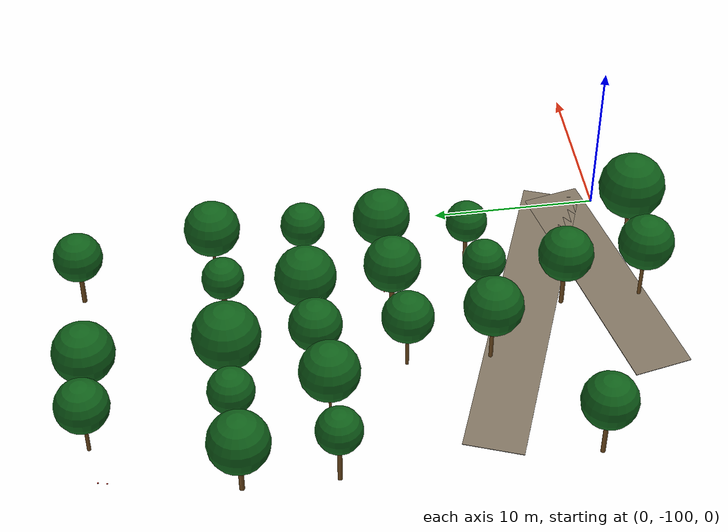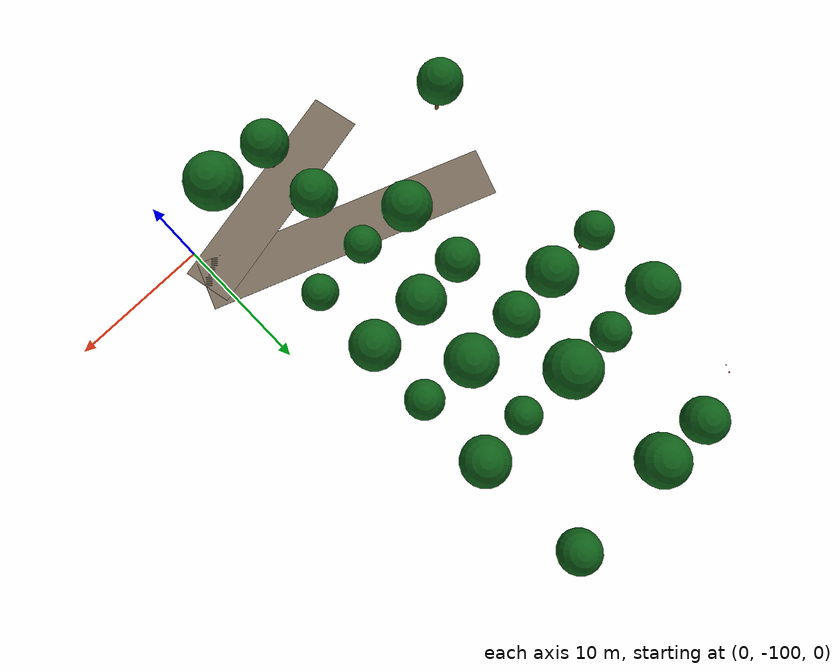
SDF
<sdf version="1.9">
 <world name="cheongsong_orchard">
  <model name="road_3">
   <static>true</static>
   <pose>-9.1 -93.8 0.02 0 0 -0.3623</pose>
   <link name="link">
    <collision name="collision">
     <geometry><box><size>21.5 3.5 0.04</size></box></geometry>
     <surface><friction><ode><mu>0.9</mu><mu2>0.9</mu2></ode></friction></surface>
    </collision>
    <visual name="visual">
     <geometry><box><size>21.5 3.5 0.04</size></box></geometry>
     <material><ambient>0.4 0.35 0.28 1</ambient><diffuse>0.5 0.45 0.38 1</diffuse></material>
    </visual>
   </link>
  </model>
  <model name="road_25">
   <static>true</static>
   <pose>-6.8 -99.2 0.02 0 0 0.2110</pose>
   <link name="link">
    <collision name="collision">
     <geometry><box><size>15.8 3.5 0.04</size></box></geometry>
     <surface><friction><ode><mu>0.9</mu><mu2>0.9</mu2></ode></friction></surface>
    </collision>
    <visual name="visual">
     <geometry><box><size>15.8 3.5 0.04</size></box></geometry>
     <material><ambient>0.4 0.35 0.28 1</ambient><diffuse>0.5 0.45 0.38 1</diffuse></material>
    </visual>
   </link>
  </model>
  <model name="apple_tree_183">
   <static>true</static>
   <pose>-8.44 -100.92 0 0 0 0</pose>
   <link name="link">
    <collision name="trunk_col">
     <pose>0 0 1.28 0 0 0</pose>
     <geometry><cylinder><radius>0.112</radius><length>2.56</length></cylinder></geometry>
    </collision>
    <visual name="trunk_vis">
     <pose>0 0 1.28 0 0 0</pose>
     <geometry><cylinder><radius>0.112</radius><length>2.56</length></cylinder></geometry>
     <material><ambient>0.35 0.22 0.08 1</ambient><diffuse>0.45 0.30 0.12 1</diffuse></material>
    </visual>
    <collision name="canopy_col">
     <pose>0 0 4.21 0 0 0</pose>
     <geometry><sphere><radius>1.65</radius></sphere></geometry>
    </collision>
    <visual name="canopy_vis">
     <pose>0 0 4.21 0 0 0</pose>
     <geometry><sphere><radius>1.65</radius></sphere></geometry>
     <material><ambient>0.04 0.28 0.06 1</ambient><diffuse>0.06 0.38 0.10 1</diffuse></material>
    </visual>
   </link>
  </model>
  <model name="apple_tree_184">
   <static>true</static>
   <pose>-4.14 -101.08 0 0 0 0</pose>
   <link name="link">
    <collision name="trunk_col">
     <pose>0 0 1.40 0 0 0</pose>
     <geometry><cylinder><radius>0.125</radius><length>2.81</length></cylinder></geometry>
    </collision>
    <visual name="trunk_vis">
     <pose>0 0 1.40 0 0 0</pose>
     <geometry><cylinder><radius>0.125</radius><length>2.81</length></cylinder></geometry>
     <material><ambient>0.35 0.22 0.08 1</ambient><diffuse>0.45 0.30 0.12 1</diffuse></material>
    </visual>
    <collision name="canopy_col">
     <pose>0 0 4.80 0 0 0</pose>
     <geometry><sphere><radius>1.99</radius></sphere></geometry>
    </collision>
    <visual name="canopy_vis">
     <pose>0 0 4.80 0 0 0</pose>
     <geometry><sphere><radius>1.99</radius></sphere></geometry>
     <material><ambient>0.04 0.28 0.06 1</ambient><diffuse>0.06 0.38 0.10 1</diffuse></material>
    </visual>
   </link>
  </model>
  <model name="apple_tree_234">
   <static>true</static>
   <pose>-20.06 -95.93 0 0 0 0</pose>
   <link name="link">
    <collision name="trunk_col">
     <pose>0 0 1.29 0 0 0</pose>
     <geometry><cylinder><radius>0.136</radius><length>2.57</length></cylinder></geometry>
    </collision>
    <visual name="trunk_vis">
     <pose>0 0 1.29 0 0 0</pose>
     <geometry><cylinder><radius>0.136</radius><length>2.57</length></cylinder></geometry>
     <material><ambient>0.35 0.22 0.08 1</ambient><diffuse>0.45 0.30 0.12 1</diffuse></material>
    </visual>
    <collision name="canopy_col">
     <pose>0 0 4.18 0 0 0</pose>
     <geometry><sphere><radius>1.61</radius></sphere></geometry>
    </collision>
    <visual name="canopy_vis">
     <pose>0 0 4.18 0 0 0</pose>
     <geometry><sphere><radius>1.61</radius></sphere></geometry>
     <material><ambient>0.04 0.28 0.06 1</ambient><diffuse>0.06 0.38 0.10 1</diffuse></material>
    </visual>
   </link>
  </model>
  <model name="apple_tree_235">
   <static>true</static>
   <pose>-8.47 -96.16 0 0 0 0</pose>
   <link name="link">
    <collision name="trunk_col">
     <pose>0 0 1.15 0 0 0</pose>
     <geometry><cylinder><radius>0.136</radius><length>2.31</length></cylinder></geometry>
    </collision>
    <visual name="trunk_vis">
     <pose>0 0 1.15 0 0 0</pose>
     <geometry><cylinder><radius>0.136</radius><length>2.31</length></cylinder></geometry>
     <material><ambient>0.35 0.22 0.08 1</ambient><diffuse>0.45 0.30 0.12 1</diffuse></material>
    </visual>
    <collision name="canopy_col">
     <pose>0 0 3.95 0 0 0</pose>
     <geometry><sphere><radius>1.64</radius></sphere></geometry>
    </collision>
    <visual name="canopy_vis">
     <pose>0 0 3.95 0 0 0</pose>
     <geometry><sphere><radius>1.64</radius></sphere></geometry>
     <material><ambient>0.04 0.28 0.06 1</ambient><diffuse>0.06 0.38 0.10 1</diffuse></material>
    </visual>
   </link>
  </model>
  <model name="apple_tree_284">
   <static>true</static>
   <pose>-12.24 -91.16 0 0 0 0</pose>
   <link name="link">
    <collision name="trunk_col">
     <pose>0 0 1.20 0 0 0</pose>
     <geometry><cylinder><radius>0.118</radius><length>2.41</length></cylinder></geometry>
    </collision>
    <visual name="trunk_vis">
     <pose>0 0 1.20 0 0 0</pose>
     <geometry><cylinder><radius>0.118</radius><length>2.41</length></cylinder></geometry>
     <material><ambient>0.35 0.22 0.08 1</ambient><diffuse>0.45 0.30 0.12 1</diffuse></material>
    </visual>
    <collision name="canopy_col">
     <pose>0 0 4.14 0 0 0</pose>
     <geometry><sphere><radius>1.73</radius></sphere></geometry>
    </collision>
    <visual name="canopy_vis">
     <pose>0 0 4.14 0 0 0</pose>
     <geometry><sphere><radius>1.73</radius></sphere></geometry>
     <material><ambient>0.04 0.28 0.06 1</ambient><diffuse>0.06 0.38 0.10 1</diffuse></material>
    </visual>
   </link>
  </model>
  <model name="apple_tree_285">
   <static>true</static>
   <pose>-8.36 -91.34 0 0 0 0</pose>
   <link name="link">
    <collision name="trunk_col">
     <pose>0 0 1.34 0 0 0</pose>
     <geometry><cylinder><radius>0.141</radius><length>2.69</length></cylinder></geometry>
    </collision>
    <visual name="trunk_vis">
     <pose>0 0 1.34 0 0 0</pose>
     <geometry><cylinder><radius>0.141</radius><length>2.69</length></cylinder></geometry>
     <material><ambient>0.35 0.22 0.08 1</ambient><diffuse>0.45 0.30 0.12 1</diffuse></material>
    </visual>
    <collision name="canopy_col">
     <pose>0 0 3.95 0 0 0</pose>
     <geometry><sphere><radius>1.27</radius></sphere></geometry>
    </collision>
    <visual name="canopy_vis">
     <pose>0 0 3.95 0 0 0</pose>
     <geometry><sphere><radius>1.27</radius></sphere></geometry>
     <material><ambient>0.04 0.28 0.06 1</ambient><diffuse>0.06 0.38 0.10 1</diffuse></material>
    </visual>
   </link>
  </model>
  <model name="apple_tree_286">
   <static>true</static>
   <pose>-4.22 -91.07 0 0 0 0</pose>
   <link name="link">
    <collision name="trunk_col">
     <pose>0 0 1.01 0 0 0</pose>
     <geometry><cylinder><radius>0.119</radius><length>2.03</length></cylinder></geometry>
    </collision>
    <visual name="trunk_vis">
     <pose>0 0 1.01 0 0 0</pose>
     <geometry><cylinder><radius>0.119</radius><length>2.03</length></cylinder></geometry>
     <material><ambient>0.35 0.22 0.08 1</ambient><diffuse>0.45 0.30 0.12 1</diffuse></material>
    </visual>
    <collision name="canopy_col">
     <pose>0 0 3.28 0 0 0</pose>
     <geometry><sphere><radius>1.25</radius></sphere></geometry>
    </collision>
    <visual name="canopy_vis">
     <pose>0 0 3.28 0 0 0</pose>
     <geometry><sphere><radius>1.25</radius></sphere></geometry>
     <material><ambient>0.04 0.28 0.06 1</ambient><diffuse>0.06 0.38 0.10 1</diffuse></material>
    </visual>
   </link>
  </model>
  <model name="apple_tree_339">
   <static>true</static>
   <pose>-12.13 -86.29 0 0 0 0</pose>
   <link name="link">
    <collision name="trunk_col">
     <pose>0 0 1.16 0 0 0</pose>
     <geometry><cylinder><radius>0.100</radius><length>2.33</length></cylinder></geometry>
    </collision>
    <visual name="trunk_vis">
     <pose>0 0 1.16 0 0 0</pose>
     <geometry><cylinder><radius>0.100</radius><length>2.33</length></cylinder></geometry>
     <material><ambient>0.35 0.22 0.08 1</ambient><diffuse>0.45 0.30 0.12 1</diffuse></material>
    </visual>
    <collision name="canopy_col">
     <pose>0 0 3.84 0 0 0</pose>
     <geometry><sphere><radius>1.51</radius></sphere></geometry>
    </collision>
    <visual name="canopy_vis">
     <pose>0 0 3.84 0 0 0</pose>
     <geometry><sphere><radius>1.51</radius></sphere></geometry>
     <material><ambient>0.04 0.28 0.06 1</ambient><diffuse>0.06 0.38 0.10 1</diffuse></material>
    </visual>
   </link>
  </model>
  <model name="apple_tree_340">
   <static>true</static>
   <pose>-8.44 -85.95 0 0 0 0</pose>
   <link name="link">
    <collision name="trunk_col">
     <pose>0 0 1.42 0 0 0</pose>
     <geometry><cylinder><radius>0.148</radius><length>2.83</length></cylinder></geometry>
    </collision>
    <visual name="trunk_vis">
     <pose>0 0 1.42 0 0 0</pose>
     <geometry><cylinder><radius>0.148</radius><length>2.83</length></cylinder></geometry>
     <material><ambient>0.35 0.22 0.08 1</ambient><diffuse>0.45 0.30 0.12 1</diffuse></material>
    </visual>
    <collision name="canopy_col">
     <pose>0 0 4.49 0 0 0</pose>
     <geometry><sphere><radius>1.66</radius></sphere></geometry>
    </collision>
    <visual name="canopy_vis">
     <pose>0 0 4.49 0 0 0</pose>
     <geometry><sphere><radius>1.66</radius></sphere></geometry>
     <material><ambient>0.04 0.28 0.06 1</ambient><diffuse>0.06 0.38 0.10 1</diffuse></material>
    </visual>
   </link>
  </model>
  <model name="apple_tree_341">
   <static>true</static>
   <pose>-4.27 -85.92 0 0 0 0</pose>
   <link name="link">
    <collision name="trunk_col">
     <pose>0 0 1.33 0 0 0</pose>
     <geometry><cylinder><radius>0.115</radius><length>2.65</length></cylinder></geometry>
    </collision>
    <visual name="trunk_vis">
     <pose>0 0 1.33 0 0 0</pose>
     <geometry><cylinder><radius>0.115</radius><length>2.65</length></cylinder></geometry>
     <material><ambient>0.35 0.22 0.08 1</ambient><diffuse>0.45 0.30 0.12 1</diffuse></material>
    </visual>
    <collision name="canopy_col">
     <pose>0 0 4.35 0 0 0</pose>
     <geometry><sphere><radius>1.69</radius></sphere></geometry>
    </collision>
    <visual name="canopy_vis">
     <pose>0 0 4.35 0 0 0</pose>
     <geometry><sphere><radius>1.69</radius></sphere></geometry>
     <material><ambient>0.04 0.28 0.06 1</ambient><diffuse>0.06 0.38 0.10 1</diffuse></material>
    </visual>
   </link>
  </model>
  <model name="apple_tree_393">
   <static>true</static>
   <pose>-19.96 -81.41 0 0 0 0</pose>
   <link name="link">
    <collision name="trunk_col">
     <pose>0 0 1.35 0 0 0</pose>
     <geometry><cylinder><radius>0.133</radius><length>2.70</length></cylinder></geometry>
    </collision>
    <visual name="trunk_vis">
     <pose>0 0 1.35 0 0 0</pose>
     <geometry><cylinder><radius>0.133</radius><length>2.70</length></cylinder></geometry>
     <material><ambient>0.35 0.22 0.08 1</ambient><diffuse>0.45 0.30 0.12 1</diffuse></material>
    </visual>
    <collision name="canopy_col">
     <pose>0 0 4.01 0 0 0</pose>
     <geometry><sphere><radius>1.31</radius></sphere></geometry>
    </collision>
    <visual name="canopy_vis">
     <pose>0 0 4.01 0 0 0</pose>
     <geometry><sphere><radius>1.31</radius></sphere></geometry>
     <material><ambient>0.04 0.28 0.06 1</ambient><diffuse>0.06 0.38 0.10 1</diffuse></material>
    </visual>
   </link>
  </model>
  <model name="apple_tree_394">
   <static>true</static>
   <pose>-15.89 -81.40 0 0 0 0</pose>
   <link name="link">
    <collision name="trunk_col">
     <pose>0 0 1.23 0 0 0</pose>
     <geometry><cylinder><radius>0.081</radius><length>2.47</length></cylinder></geometry>
    </collision>
    <visual name="trunk_vis">
     <pose>0 0 1.23 0 0 0</pose>
     <geometry><cylinder><radius>0.081</radius><length>2.47</length></cylinder></geometry>
     <material><ambient>0.35 0.22 0.08 1</ambient><diffuse>0.45 0.30 0.12 1</diffuse></material>
    </visual>
    <collision name="canopy_col">
     <pose>0 0 4.19 0 0 0</pose>
     <geometry><sphere><radius>1.72</radius></sphere></geometry>
    </collision>
    <visual name="canopy_vis">
     <pose>0 0 4.19 0 0 0</pose>
     <geometry><sphere><radius>1.72</radius></sphere></geometry>
     <material><ambient>0.04 0.28 0.06 1</ambient><diffuse>0.06 0.38 0.10 1</diffuse></material>
    </visual>
   </link>
  </model>
  <model name="apple_tree_395">
   <static>true</static>
   <pose>-12.23 -81.06 0 0 0 0</pose>
   <link name="link">
    <collision name="trunk_col">
     <pose>0 0 1.28 0 0 0</pose>
     <geometry><cylinder><radius>0.091</radius><length>2.56</length></cylinder></geometry>
    </collision>
    <visual name="trunk_vis">
     <pose>0 0 1.28 0 0 0</pose>
     <geometry><cylinder><radius>0.091</radius><length>2.56</length></cylinder></geometry>
     <material><ambient>0.35 0.22 0.08 1</ambient><diffuse>0.45 0.30 0.12 1</diffuse></material>
    </visual>
    <collision name="canopy_col">
     <pose>0 0 4.09 0 0 0</pose>
     <geometry><sphere><radius>1.53</radius></sphere></geometry>
    </collision>
    <visual name="canopy_vis">
     <pose>0 0 4.09 0 0 0</pose>
     <geometry><sphere><radius>1.53</radius></sphere></geometry>
     <material><ambient>0.04 0.28 0.06 1</ambient><diffuse>0.06 0.38 0.10 1</diffuse></material>
    </visual>
   </link>
  </model>
  <model name="apple_tree_396">
   <static>true</static>
   <pose>-8.08 -80.97 0 0 0 0</pose>
   <link name="link">
    <collision name="trunk_col">
     <pose>0 0 1.02 0 0 0</pose>
     <geometry><cylinder><radius>0.087</radius><length>2.03</length></cylinder></geometry>
    </collision>
    <visual name="trunk_vis">
     <pose>0 0 1.02 0 0 0</pose>
     <geometry><cylinder><radius>0.087</radius><length>2.03</length></cylinder></geometry>
     <material><ambient>0.35 0.22 0.08 1</ambient><diffuse>0.45 0.30 0.12 1</diffuse></material>
    </visual>
    <collision name="canopy_col">
     <pose>0 0 3.84 0 0 0</pose>
     <geometry><sphere><radius>1.80</radius></sphere></geometry>
    </collision>
    <visual name="canopy_vis">
     <pose>0 0 3.84 0 0 0</pose>
     <geometry><sphere><radius>1.80</radius></sphere></geometry>
     <material><ambient>0.04 0.28 0.06 1</ambient><diffuse>0.06 0.38 0.10 1</diffuse></material>
    </visual>
   </link>
  </model>
  <model name="apple_tree_397">
   <static>true</static>
   <pose>-4.14 -81.26 0 0 0 0</pose>
   <link name="link">
    <collision name="trunk_col">
     <pose>0 0 1.44 0 0 0</pose>
     <geometry><cylinder><radius>0.102</radius><length>2.89</length></cylinder></geometry>
    </collision>
    <visual name="trunk_vis">
     <pose>0 0 1.44 0 0 0</pose>
     <geometry><cylinder><radius>0.102</radius><length>2.89</length></cylinder></geometry>
     <material><ambient>0.35 0.22 0.08 1</ambient><diffuse>0.45 0.30 0.12 1</diffuse></material>
    </visual>
    <collision name="canopy_col">
     <pose>0 0 4.20 0 0 0</pose>
     <geometry><sphere><radius>1.31</radius></sphere></geometry>
    </collision>
    <visual name="canopy_vis">
     <pose>0 0 4.20 0 0 0</pose>
     <geometry><sphere><radius>1.31</radius></sphere></geometry>
     <material><ambient>0.04 0.28 0.06 1</ambient><diffuse>0.06 0.38 0.10 1</diffuse></material>
    </visual>
   </link>
  </model>
  <model name="apple_tree_451">
   <static>true</static>
   <pose>-19.91 -76.10 0 0 0 0</pose>
   <link name="link">
    <collision name="trunk_col">
     <pose>0 0 1.06 0 0 0</pose>
     <geometry><cylinder><radius>0.148</radius><length>2.12</length></cylinder></geometry>
    </collision>
    <visual name="trunk_vis">
     <pose>0 0 1.06 0 0 0</pose>
     <geometry><cylinder><radius>0.148</radius><length>2.12</length></cylinder></geometry>
     <material><ambient>0.35 0.22 0.08 1</ambient><diffuse>0.45 0.30 0.12 1</diffuse></material>
    </visual>
    <collision name="canopy_col">
     <pose>0 0 3.87 0 0 0</pose>
     <geometry><sphere><radius>1.75</radius></sphere></geometry>
    </collision>
    <visual name="canopy_vis">
     <pose>0 0 3.87 0 0 0</pose>
     <geometry><sphere><radius>1.75</radius></sphere></geometry>
     <material><ambient>0.04 0.28 0.06 1</ambient><diffuse>0.06 0.38 0.10 1</diffuse></material>
    </visual>
   </link>
  </model>
  <model name="apple_tree_452">
   <static>true</static>
   <pose>-15.93 -76.02 0 0 0 0</pose>
   <link name="link">
    <collision name="trunk_col">
     <pose>0 0 1.08 0 0 0</pose>
     <geometry><cylinder><radius>0.121</radius><length>2.17</length></cylinder></geometry>
    </collision>
    <visual name="trunk_vis">
     <pose>0 0 1.08 0 0 0</pose>
     <geometry><cylinder><radius>0.121</radius><length>2.17</length></cylinder></geometry>
     <material><ambient>0.35 0.22 0.08 1</ambient><diffuse>0.45 0.30 0.12 1</diffuse></material>
    </visual>
    <collision name="canopy_col">
     <pose>0 0 3.51 0 0 0</pose>
     <geometry><sphere><radius>1.34</radius></sphere></geometry>
    </collision>
    <visual name="canopy_vis">
     <pose>0 0 3.51 0 0 0</pose>
     <geometry><sphere><radius>1.34</radius></sphere></geometry>
     <material><ambient>0.04 0.28 0.06 1</ambient><diffuse>0.06 0.38 0.10 1</diffuse></material>
    </visual>
   </link>
  </model>
  <model name="apple_tree_453">
   <static>true</static>
   <pose>-12.31 -76.08 0 0 0 0</pose>
   <link name="link">
    <collision name="trunk_col">
     <pose>0 0 1.04 0 0 0</pose>
     <geometry><cylinder><radius>0.131</radius><length>2.07</length></cylinder></geometry>
    </collision>
    <visual name="trunk_vis">
     <pose>0 0 1.04 0 0 0</pose>
     <geometry><cylinder><radius>0.131</radius><length>2.07</length></cylinder></geometry>
     <material><ambient>0.35 0.22 0.08 1</ambient><diffuse>0.45 0.30 0.12 1</diffuse></material>
    </visual>
    <collision name="canopy_col">
     <pose>0 0 4.03 0 0 0</pose>
     <geometry><sphere><radius>1.96</radius></sphere></geometry>
    </collision>
    <visual name="canopy_vis">
     <pose>0 0 4.03 0 0 0</pose>
     <geometry><sphere><radius>1.96</radius></sphere></geometry>
     <material><ambient>0.04 0.28 0.06 1</ambient><diffuse>0.06 0.38 0.10 1</diffuse></material>
    </visual>
   </link>
  </model>
  <model name="apple_tree_454">
   <static>true</static>
   <pose>-7.92 -76.25 0 0 0 0</pose>
   <link name="link">
    <collision name="trunk_col">
     <pose>0 0 1.46 0 0 0</pose>
     <geometry><cylinder><radius>0.148</radius><length>2.92</length></cylinder></geometry>
    </collision>
    <visual name="trunk_vis">
     <pose>0 0 1.46 0 0 0</pose>
     <geometry><cylinder><radius>0.148</radius><length>2.92</length></cylinder></geometry>
     <material><ambient>0.35 0.22 0.08 1</ambient><diffuse>0.45 0.30 0.12 1</diffuse></material>
    </visual>
    <collision name="canopy_col">
     <pose>0 0 4.15 0 0 0</pose>
     <geometry><sphere><radius>1.23</radius></sphere></geometry>
    </collision>
    <visual name="canopy_vis">
     <pose>0 0 4.15 0 0 0</pose>
     <geometry><sphere><radius>1.23</radius></sphere></geometry>
     <material><ambient>0.04 0.28 0.06 1</ambient><diffuse>0.06 0.38 0.10 1</diffuse></material>
    </visual>
   </link>
  </model>
  <model name="apple_tree_455">
   <static>true</static>
   <pose>-4.13 -75.94 0 0 0 0</pose>
   <link name="link">
    <collision name="trunk_col">
     <pose>0 0 1.45 0 0 0</pose>
     <geometry><cylinder><radius>0.095</radius><length>2.89</length></cylinder></geometry>
    </collision>
    <visual name="trunk_vis">
     <pose>0 0 1.45 0 0 0</pose>
     <geometry><cylinder><radius>0.095</radius><length>2.89</length></cylinder></geometry>
     <material><ambient>0.35 0.22 0.08 1</ambient><diffuse>0.45 0.30 0.12 1</diffuse></material>
    </visual>
    <collision name="canopy_col">
     <pose>0 0 4.55 0 0 0</pose>
     <geometry><sphere><radius>1.65</radius></sphere></geometry>
    </collision>
    <visual name="canopy_vis">
     <pose>0 0 4.55 0 0 0</pose>
     <geometry><sphere><radius>1.65</radius></sphere></geometry>
     <material><ambient>0.04 0.28 0.06 1</ambient><diffuse>0.06 0.38 0.10 1</diffuse></material>
    </visual>
   </link>
  </model>
  <model name="apple_tree_511">
   <static>true</static>
   <pose>-16.02 -68.02 0 0 0 0</pose>
   <link name="link">
    <collision name="trunk_col">
     <pose>0 0 1.04 0 0 0</pose>
     <geometry><cylinder><radius>0.110</radius><length>2.08</length></cylinder></geometry>
    </collision>
    <visual name="trunk_vis">
     <pose>0 0 1.04 0 0 0</pose>
     <geometry><cylinder><radius>0.110</radius><length>2.08</length></cylinder></geometry>
     <material><ambient>0.35 0.22 0.08 1</ambient><diffuse>0.45 0.30 0.12 1</diffuse></material>
    </visual>
    <collision name="canopy_col">
     <pose>0 0 3.62 0 0 0</pose>
     <geometry><sphere><radius>1.54</radius></sphere></geometry>
    </collision>
    <visual name="canopy_vis">
     <pose>0 0 3.62 0 0 0</pose>
     <geometry><sphere><radius>1.54</radius></sphere></geometry>
     <material><ambient>0.04 0.28 0.06 1</ambient><diffuse>0.06 0.38 0.10 1</diffuse></material>
    </visual>
   </link>
  </model>
  <model name="apple_tree_512">
   <static>true</static>
   <pose>-12.23 -68.20 0 0 0 0</pose>
   <link name="link">
    <collision name="trunk_col">
     <pose>0 0 0.98 0 0 0</pose>
     <geometry><cylinder><radius>0.117</radius><length>1.95</length></cylinder></geometry>
    </collision>
    <visual name="trunk_vis">
     <pose>0 0 0.98 0 0 0</pose>
     <geometry><cylinder><radius>0.117</radius><length>1.95</length></cylinder></geometry>
     <material><ambient>0.35 0.22 0.08 1</ambient><diffuse>0.45 0.30 0.12 1</diffuse></material>
    </visual>
    <collision name="canopy_col">
     <pose>0 0 3.74 0 0 0</pose>
     <geometry><sphere><radius>1.78</radius></sphere></geometry>
    </collision>
    <visual name="canopy_vis">
     <pose>0 0 3.74 0 0 0</pose>
     <geometry><sphere><radius>1.78</radius></sphere></geometry>
     <material><ambient>0.04 0.28 0.06 1</ambient><diffuse>0.06 0.38 0.10 1</diffuse></material>
    </visual>
   </link>
  </model>
  <model name="apple_tree_514">
   <static>true</static>
   <pose>-4.49 -68.05 0 0 0 0</pose>
   <link name="link">
    <collision name="trunk_col">
     <pose>0 0 1.09 0 0 0</pose>
     <geometry><cylinder><radius>0.141</radius><length>2.17</length></cylinder></geometry>
    </collision>
    <visual name="trunk_vis">
     <pose>0 0 1.09 0 0 0</pose>
     <geometry><cylinder><radius>0.141</radius><length>2.17</length></cylinder></geometry>
     <material><ambient>0.35 0.22 0.08 1</ambient><diffuse>0.45 0.30 0.12 1</diffuse></material>
    </visual>
    <collision name="canopy_col">
     <pose>0 0 3.62 0 0 0</pose>
     <geometry><sphere><radius>1.45</radius></sphere></geometry>
    </collision>
    <visual name="canopy_vis">
     <pose>0 0 3.62 0 0 0</pose>
     <geometry><sphere><radius>1.45</radius></sphere></geometry>
     <material><ambient>0.04 0.28 0.06 1</ambient><diffuse>0.06 0.38 0.10 1</diffuse></material>
    </visual>
   </link>
  </model>
  <model name="apple_340_0">
   <static>true</static>
   <pose>-8.63 -86.38 2.48 0 0 0</pose>
   <link name="link">
    <visual name="visual">
     <geometry><sphere><radius>0.04</radius></sphere></geometry>
     <material><ambient>0.7 0.05 0.02 1</ambient><diffuse>0.9 0.10 0.05 1</diffuse></material>
    </visual>
   </link>
  </model>
  <model name="apple_340_1">
   <static>true</static>
   <pose>-8.49 -85.50 2.36 0 0 0</pose>
   <link name="link">
    <visual name="visual">
     <geometry><sphere><radius>0.04</radius></sphere></geometry>
     <material><ambient>0.7 0.05 0.02 1</ambient><diffuse>0.9 0.10 0.05 1</diffuse></material>
    </visual>
   </link>
  </model>
  <model name="apple_340_2">
   <static>true</static>
   <pose>-8.54 -85.35 3.08 0 0 0</pose>
   <link name="link">
    <visual name="visual">
     <geometry><sphere><radius>0.04</radius></sphere></geometry>
     <material><ambient>0.7 0.05 0.02 1</ambient><diffuse>0.9 0.10 0.05 1</diffuse></material>
    </visual>
   </link>
  </model>
  <model name="apple_510_0">
   <static>true</static>
   <pose>-20.06 -68.60 1.97 0 0 0</pose>
   <link name="link">
    <visual name="visual">
     <geometry><sphere><radius>0.04</radius></sphere></geometry>
     <material><ambient>0.7 0.05 0.02 1</ambient><diffuse>0.9 0.10 0.05 1</diffuse></material>
    </visual>
   </link>
  </model>
  <model name="apple_510_3">
   <static>true</static>
   <pose>-20.24 -69.08 2.05 0 0 0</pose>
   <link name="link">
    <visual name="visual">
     <geometry><sphere><radius>0.04</radius></sphere></geometry>
     <material><ambient>0.7 0.05 0.02 1</ambient><diffuse>0.9 0.10 0.05 1</diffuse></material>
    </visual>
   </link>
  </model>
 </world>
</sdf>
